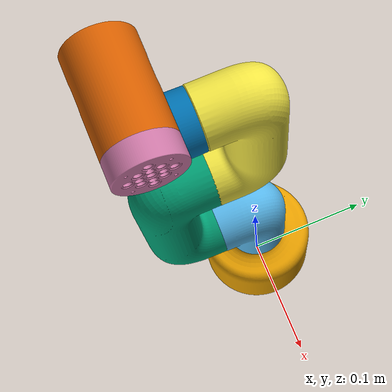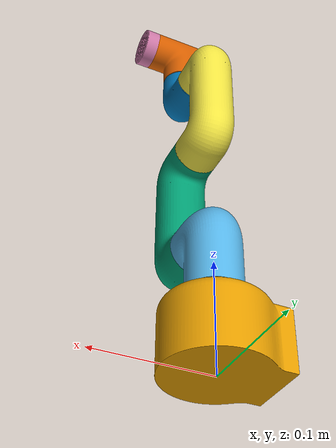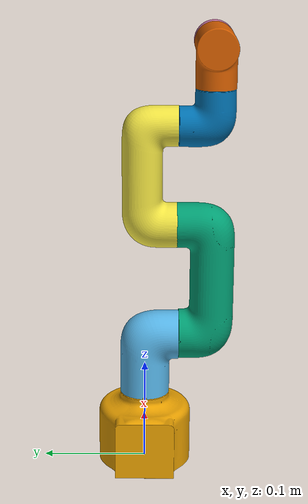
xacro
<?xml version="1.0"?>
<robot  xmlns:xacro="http://www.ros.org/wiki/xacro" name="mycobot" >

  <xacro:include filename="$(find mycobot_description)/urdf/common.xacro" />

  <link name="link1">
    <inertial>
      <origin xyz="0 0 0.035" rpy="0 0 0" />
      <mass value="10.0" /> <!-- for stable manipulation in gazebo-->
      <xacro:cylinder_inertia m="10.0" r="0.05" h="0.07" />
    </inertial>
    <visual>
      <geometry>
       <mesh filename="package://mycobot_description/urdf/mycobot/mesh/link1.dae"/>
      </geometry>
      <origin xyz = "0.0 0 0 " rpy = " 0 0 -${pi/2}"/>
    </visual>
    <collision>
      <geometry>
       <mesh filename="package://mycobot_description/urdf/mycobot/mesh/link1.dae"/>
        </geometry>
        <origin xyz = "0.0 0 0 " rpy = " 0 0 -${pi/2}"/>
    </collision>
  </link>

  <link name="link2">
    <inertial>
      <origin xyz="0 0 0.060" rpy="0 0 0" />
      <mass value="0.2" />
      <xacro:cylinder_inertia m="0.2" r="0.05" h="0.08" />
    </inertial>
    <visual>
      <geometry>
       <mesh filename="package://mycobot_description/urdf/mycobot/mesh/link2.dae"/>
      </geometry>
      <origin xyz = "0.0 0 -0.06096 " rpy = " 0 0 -${pi/2}"/>
    </visual>
    <collision>
     <geometry>
       <mesh filename="package://mycobot_description/urdf/mycobot/mesh/link2.dae"/>
      </geometry>
      <origin xyz = "0.0 0 -0.06096 " rpy = " 0 0 -${pi/2}"/>
    </collision>
  </link>

  <link name="link3">
    <inertial>
      <origin xyz="0.01 0 0.06" rpy="0 0 0" />
      <mass value="0.4" />
      <xacro:cylinder_inertia m="0.4" r="0.05" h="0.155" />
    </inertial>
    <visual>
      <geometry>
       <mesh filename="package://mycobot_description/urdf/mycobot/mesh/link3.dae"/>
      </geometry>
    <origin xyz = "0.0 0 0.03256 " rpy = " 0 -${pi/2} 0"/>
    </visual>
    <collision>
      <geometry>
       <mesh filename="package://mycobot_description/urdf/mycobot/mesh/link3.dae"/>
      </geometry>
      <origin xyz = "0.0 0 0.03256 " rpy = " 0 -${pi/2} 0"/>
    </collision>
  </link>

  <link name="link4">
    <inertial>
      <origin xyz="-0.01 0 0.05" rpy="0 0 0" />
      <mass value="0.4" />
      <xacro:cylinder_inertia m="0.4" r="0.05" h="0.155" />
    </inertial>
    <visual>
      <geometry>
       <mesh filename="package://mycobot_description/urdf/mycobot/mesh/link4.dae"/>
      </geometry>
      <origin xyz = "0.0 0 0.03056 " rpy = " 0 -${pi/2} 0"/>
    </visual>
    <collision>
      <geometry>
       <mesh filename="package://mycobot_description/urdf/mycobot/mesh/link4.dae"/>
      </geometry>
      <origin xyz = "0.0 0 0.03056 " rpy = " 0 -${pi/2} 0"/>
    </collision>
  </link>

  <link name="link5">
    <inertial>
      <origin xyz="0 0 0.05" rpy="0 0 0" />
      <mass value="0.2" />
      <xacro:cylinder_inertia m="0.2" r="0.05" h="0.05" />
    </inertial>
    <visual>
      <geometry>
       <mesh filename="package://mycobot_description/urdf/mycobot/mesh/link5.dae"/>
      </geometry>
    <origin xyz = "0.0 0 -0.03356 " rpy = " -${pi/2} 0 0"/>
    </visual>
    <collision>
       <geometry>
       <mesh filename="package://mycobot_description/urdf/mycobot/mesh/link5.dae"/>
      </geometry>
      <origin xyz = "0.0 0 -0.03356 " rpy = " -${pi/2} 0 0"/>
    </collision>
  </link>

  <link name="link6">
    <inertial>
      <origin xyz="0 0 0.037" rpy="0 0 0" />
      <mass value="0.5" />
      <xacro:cylinder_inertia m="0.5" r="0.05" h="0.06" />
    </inertial>
    <visual>
      <geometry>
       <mesh filename="package://mycobot_description/urdf/mycobot/mesh/link6.dae"/>
      </geometry>
    <origin xyz = "0 0.00 -0.038 " rpy = " 0 0 0"/>
    </visual>
    <collision>
      <geometry>
       <mesh filename="package://mycobot_description/urdf/mycobot/mesh/link6.dae"/>
      </geometry>
    <origin xyz = "0 0.00 -0.038 " rpy = " 0 0 0"/>
    </collision>
  </link>

  <link name="link7">
    <inertial>
      <origin xyz="0 0.0025 0" rpy="${M_PI/2} 0 0" />
      <mass value="0.1" />
      <xacro:cylinder_inertia m="0.1" r="0.02" h="0.005" />
    </inertial>
    <visual>
      <geometry>
       <mesh filename="package://mycobot_description/urdf/mycobot/mesh/link7.dae"/>
      </geometry>
    <origin xyz = "0.0 0 -0.012 " rpy = " 0 0 0"/>
    </visual>
    <collision>
      <geometry>
       <mesh filename="package://mycobot_description/urdf/mycobot/mesh/link7.dae"/>
      </geometry>
    <origin xyz = "0.0 0 -0.012 " rpy = " 0 0 0"/>
    </collision>
  </link>

  <joint name="joint1" type="revolute">
    <axis xyz="0 0 1"/>
    <limit effort = "10.0" lower = "${-pi}" upper = "${pi}" velocity = "1.0"/>
    <parent link="link1"/>
    <child link="link2"/>
    <origin xyz= "0 0 0.13156" rpy = "0 0 0"/>
    <dynamics damping="1.0e-6" friction="2.0e-1" />
  </joint>

  <joint name="joint2" type="revolute">
    <axis xyz="0 0 1"/>
    <limit effort = "10.0" lower = "${-pi}" upper = "${pi}" velocity = "1.0"/>
    <parent link="link2"/>
    <child link="link3"/>
    <origin xyz= "0 0  0" rpy = "0 ${pi/2} -${pi/2}"/>
    <dynamics damping="1.0e-6" friction="2.0e-1" />
  </joint>

  <joint name="joint3" type="revolute">
    <axis xyz=" 0 0 1"/>
    <limit effort = "10.0" lower = "${-pi}" upper = "${pi}" velocity = "1.0"/>
    <parent link="link3"/>
    <child link="link4"/>
    <origin xyz= "-0.1104 0 0   " rpy = "0 0 0"/>
    <dynamics damping="1.0e-6" friction="2.0e-1" />
  </joint>

  <joint name="joint4" type="revolute">
    <axis xyz=" 0 0 1"/>
    <limit effort = "10.0" lower = "${-pi}" upper = "${pi}" velocity = "1.0"/>
    <parent link="link4"/>
    <child link="link5"/>
    <origin xyz= "-0.096 0 0.06462" rpy = "0 0 -${pi/2}"/>
    <dynamics damping="1.0e-6" friction="2.0e-1" />
  </joint>

  <joint name="joint5" type="revolute">
    <axis xyz="0 0 1"/>
    <limit effort = "10.0" lower = "${-pi}" upper = "${pi}" velocity = "1.0"/>
    <parent link="link5"/>
    <child link="link6"/>
    <origin xyz= "0 -0.07318 0" rpy = "${pi/2} -${pi/2} 0"/>
    <dynamics damping="1.0e-6" friction="2.0e-1" />
  </joint>

  <joint name="joint6" type="revolute">
    <axis xyz="0 0 1"/>
    <limit effort = "10.0" lower = "${-pi}" upper = "${pi}" velocity = "1.0"/>
    <parent link="link6"/>
    <child link="link7"/>
    <origin xyz= "0 0.0456 0" rpy = "-${pi/2} 0 0"/>
    <dynamics damping="1.0e-6" friction="2.0e-1" />
  </joint>

  <transmission name="joint1_trans">
    <provideFeedback>true</provideFeedback>
    <implicitSpringDamper>0</implicitSpringDamper>
    <motorTorqueConstant>0.418</motorTorqueConstant>
    <type>transmission_interface/SimpleTransmission</type>
    <joint name="joint1">
      <hardwareInterface>hardware_interface/PositionJointInterface</hardwareInterface>
    </joint>
    <actuator name="joint1_motor">
      <hardwareInterface>hardware_interface/PositionJointInterface</hardwareInterface>
      <mechanicalReduction>1</mechanicalReduction>
    </actuator>
  </transmission>
  <transmission name="joint2_trans">
    <provideFeedback>true</provideFeedback>
    <implicitSpringDamper>0</implicitSpringDamper>
    <motorTorqueConstant>0.418</motorTorqueConstant>
    <type>transmission_interface/SimpleTransmission</type>
    <joint name="joint2">
      <hardwareInterface>hardware_interface/PositionJointInterface</hardwareInterface>
    </joint>
    <actuator name="joint2_motor">
      <hardwareInterface>hardware_interface/PositionJointInterface</hardwareInterface>
      <mechanicalReduction>1</mechanicalReduction>
    </actuator>
  </transmission>
  <transmission name="joint3_trans">
    <provideFeedback>true</provideFeedback>
    <implicitSpringDamper>0</implicitSpringDamper>
    <motorTorqueConstant>0.418</motorTorqueConstant>
    <type>transmission_interface/SimpleTransmission</type>
    <joint name="joint3">
      <hardwareInterface>hardware_interface/PositionJointInterface</hardwareInterface>
    </joint>
    <actuator name="joint3_motor">
      <hardwareInterface>hardware_interface/PositionJointInterface</hardwareInterface>
      <mechanicalReduction>1</mechanicalReduction>
    </actuator>
  </transmission>
  <transmission name="joint4_trans">
    <provideFeedback>true</provideFeedback>
    <implicitSpringDamper>0</implicitSpringDamper>
    <motorTorqueConstant>0.418</motorTorqueConstant>
    <type>transmission_interface/SimpleTransmission</type>
    <joint name="joint4">
      <hardwareInterface>hardware_interface/PositionJointInterface</hardwareInterface>
    </joint>
    <actuator name="joint4_motor">
      <hardwareInterface>hardware_interface/PositionJointInterface</hardwareInterface>
      <mechanicalReduction>1</mechanicalReduction>
    </actuator>
  </transmission>
  <transmission name="joint5_trans">
    <provideFeedback>true</provideFeedback>
    <implicitSpringDamper>0</implicitSpringDamper>
    <motorTorqueConstant>0.418</motorTorqueConstant>
    <type>transmission_interface/SimpleTransmission</type>
    <joint name="joint5">
      <hardwareInterface>hardware_interface/PositionJointInterface</hardwareInterface>
    </joint>
    <actuator name="joint5_motor">
      <hardwareInterface>hardware_interface/PositionJointInterface</hardwareInterface>
      <mechanicalReduction>1</mechanicalReduction>
    </actuator>
  </transmission>
  <transmission name="joint6_trans">
    <provideFeedback>true</provideFeedback>
    <implicitSpringDamper>0</implicitSpringDamper>
    <motorTorqueConstant>0.418</motorTorqueConstant>
    <type>transmission_interface/SimpleTransmission</type>
    <joint name="joint6">
      <hardwareInterface>hardware_interface/PositionJointInterface</hardwareInterface>
    </joint>
    <actuator name="joint6_motor">
      <hardwareInterface>hardware_interface/PositionJointInterface</hardwareInterface>
      <mechanicalReduction>1</mechanicalReduction>
    </actuator>
  </transmission>

</robot>

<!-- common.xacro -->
<robot name="common" xmlns:xacro="http://ros.org/wiki/xacro">

  <xacro:property name="width" value=".2" />

  <!-- PROPERTY LIST -->
  <!-- All units in m-kg-s-radians unit system -->
  <xacro:property name="M_PI" value="3.14159" />
  <xacro:property name="SCALE_MM" value="0.001"/>
  <xacro:property name="SCALE_CM" value="0.01"/>

  <!-- Inertial macros. Units are kg*m^2 -->
  <xacro:macro name="box_inertia" params="m x y z">
    <inertia ixx="${m*(y*y+z*z)/12}" ixy = "0" ixz = "0"
      iyy="${m*(z*z+x*x)/12}" iyz = "0"
      izz="${m*(x*x+y*y)/12}" />
  </xacro:macro>
  <xacro:macro name="cylinder_inertia" params="m r h">
    <inertia ixx="${m*(3*r*r+h*h)/12}" ixy="0" ixz="0"
      iyy="${m*(3*r*r+h*h)/12}" iyz="0"
      izz="${m*r*r/2}" />
  </xacro:macro>
  <xacro:macro name="sphere_inertia" params="m r">
    <inertia ixx="${m*r*r/5}" ixy="0" ixz="0"
      iyy="${m*r*r/5}" iyz="0"
      izz="${m*r*r/5}" />
  </xacro:macro>

</robot>
